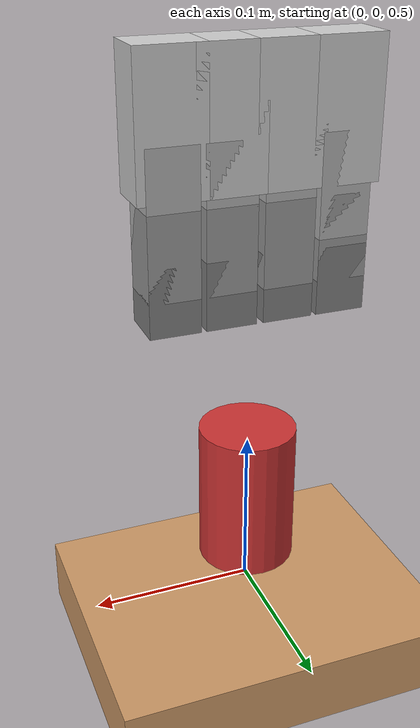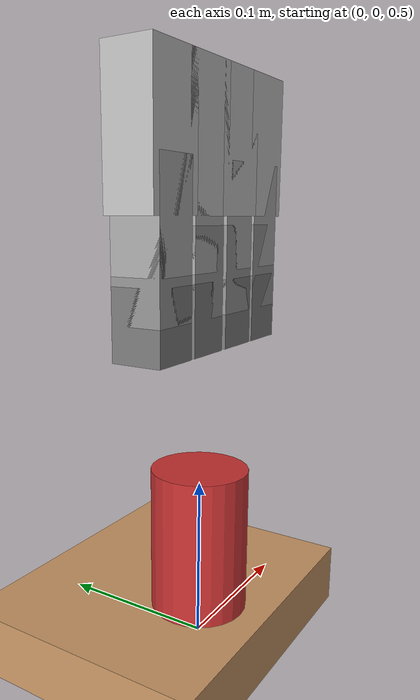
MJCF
<mujoco model="grasp_simulation">
    <compiler angle="radian" meshdir="../meshes" texturedir="../textures"/>

    <option gravity="0 0 -9.81" timestep="0.002" impratio="10">
        <flag contact="enable" energy="enable"/>
    </option>

    <visual>
        <headlight ambient="0.5 0.5 0.5"/>
    </visual>

    <asset>
        <texture type="skybox" builtin="gradient" rgb1="0.3 0.5 0.7" rgb2="0 0 0" width="512" height="512"/>
        <texture name="groundplane" type="2d" builtin="checker" rgb1="0.2 0.2 0.2" rgb2="0.3 0.3 0.3" width="512" height="512"/>
        <material name="groundplane" texture="groundplane" texrepeat="10 10"/>
    </asset>

    <worldbody>
        <!-- Ground plane -->
        <geom name="floor" type="plane" size="2 2 0.1" material="groundplane"/>

        <!-- Table -->
        <body name="table" pos="0 0 0.5">
            <geom name="table_top" type="box" size="0.6 0.4 0.02" rgba="0.8 0.6 0.4 1"/>
        </body>

        <!-- Simple Allegro Hand Model -->
        <!-- This is a simplified version - you'll need to copy the full Allegro model later -->
        <body name="hand_base" pos="0 0 0.8">
            <!-- Index finger -->
            <body name="if_link_0" pos="0.05 0 0">
                <joint name="if_joint_0" type="hinge" pos="0 0 0" axis="0 1 0" range="-0.5 0.5"/>
                <geom name="if_link_0_geom" type="box" size="0.02 0.015 0.04" rgba="0.8 0.8 0.8 1"/>

                <body name="if_link_1" pos="0 0 -0.04">
                    <joint name="if_joint_1" type="hinge" pos="0 0 0" axis="1 0 0" range="0 1.6"/>
                    <geom name="if_link_1_geom" type="box" size="0.015 0.015 0.03" rgba="0.7 0.7 0.7 1"/>

                    <body name="if_link_2" pos="0 0 -0.03">
                        <joint name="if_joint_2" type="hinge" pos="0 0 0" axis="1 0 0" range="0 1.6"/>
                        <geom name="if_link_2_geom" type="box" size="0.015 0.015 0.025" rgba="0.6 0.6 0.6 1"/>

                        <body name="if_link_3" pos="0 0 -0.025">
                            <joint name="if_joint_3" type="hinge" pos="0 0 0" axis="1 0 0" range="0 1.6"/>
                            <geom name="if_link_3_geom" type="box" size="0.015 0.015 0.02" rgba="0.5 0.5 0.5 1"/>
                        </body>
                    </body>
                </body>
            </body>

            <!-- Middle finger -->
            <body name="mf_link_0" pos="0.017 0 0">
                <joint name="mf_joint_0" type="hinge" pos="0 0 0" axis="0 1 0" range="-0.5 0.5"/>
                <geom name="mf_link_0_geom" type="box" size="0.02 0.015 0.04" rgba="0.8 0.8 0.8 1"/>

                <body name="mf_link_1" pos="0 0 -0.04">
                    <joint name="mf_joint_1" type="hinge" pos="0 0 0" axis="1 0 0" range="0 1.6"/>
                    <geom name="mf_link_1_geom" type="box" size="0.015 0.015 0.03" rgba="0.7 0.7 0.7 1"/>

                    <body name="mf_link_2" pos="0 0 -0.03">
                        <joint name="mf_joint_2" type="hinge" pos="0 0 0" axis="1 0 0" range="0 1.6"/>
                        <geom name="mf_link_2_geom" type="box" size="0.015 0.015 0.025" rgba="0.6 0.6 0.6 1"/>

                        <body name="mf_link_3" pos="0 0 -0.025">
                            <joint name="mf_joint_3" type="hinge" pos="0 0 0" axis="1 0 0" range="0 1.6"/>
                            <geom name="mf_link_3_geom" type="box" size="0.015 0.015 0.02" rgba="0.5 0.5 0.5 1"/>
                        </body>
                    </body>
                </body>
            </body>

            <!-- Ring finger -->
            <body name="rf_link_0" pos="-0.017 0 0">
                <joint name="rf_joint_0" type="hinge" pos="0 0 0" axis="0 1 0" range="-0.5 0.5"/>
                <geom name="rf_link_0_geom" type="box" size="0.02 0.015 0.04" rgba="0.8 0.8 0.8 1"/>

                <body name="rf_link_1" pos="0 0 -0.04">
                    <joint name="rf_joint_1" type="hinge" pos="0 0 0" axis="1 0 0" range="0 1.6"/>
                    <geom name="rf_link_1_geom" type="box" size="0.015 0.015 0.03" rgba="0.7 0.7 0.7 1"/>

                    <body name="rf_link_2" pos="0 0 -0.03">
                        <joint name="rf_joint_2" type="hinge" pos="0 0 0" axis="1 0 0" range="0 1.6"/>
                        <geom name="rf_link_2_geom" type="box" size="0.015 0.015 0.025" rgba="0.6 0.6 0.6 1"/>

                        <body name="rf_link_3" pos="0 0 -0.025">
                            <joint name="rf_joint_3" type="hinge" pos="0 0 0" axis="1 0 0" range="0 1.6"/>
                            <geom name="rf_link_3_geom" type="box" size="0.015 0.015 0.02" rgba="0.5 0.5 0.5 1"/>
                        </body>
                    </body>
                </body>
            </body>

            <!-- Thumb -->
            <body name="th_link_0" pos="-0.05 0 0">
                <joint name="th_joint_0" type="hinge" pos="0 0 0" axis="0 0 1" range="-1.0 1.0"/>
                <geom name="th_link_0_geom" type="box" size="0.02 0.015 0.04" rgba="0.8 0.8 0.8 1"/>

                <body name="th_link_1" pos="0 0 -0.04">
                    <joint name="th_joint_1" type="hinge" pos="0 0 0" axis="0 1 0" range="0 1.3"/>
                    <geom name="th_link_1_geom" type="box" size="0.015 0.015 0.03" rgba="0.7 0.7 0.7 1"/>

                    <body name="th_link_2" pos="0 0 -0.03">
                        <joint name="th_joint_2" type="hinge" pos="0 0 0" axis="0 1 0" range="0 1.0"/>
                        <geom name="th_link_2_geom" type="box" size="0.015 0.015 0.025" rgba="0.6 0.6 0.6 1"/>

                        <body name="th_link_3" pos="0 0 -0.025">
                            <joint name="th_joint_3" type="hinge" pos="0 0 0" axis="0 1 0" range="0 1.0"/>
                            <geom name="th_link_3_geom" type="box" size="0.015 0.015 0.02" rgba="0.5 0.5 0.5 1"/>
                        </body>
                    </body>
                </body>
            </body>
        </body>

        <!-- Object to grasp -->
        <body name="object" pos="0 0 0.55">
            <freejoint/>
            <geom name="cylinder" type="cylinder" size="0.03 0.06"
                  rgba="0.8 0.2 0.2 1" mass="0.2"
                  friction="1.0 0.005 0.0001" condim="4"/>
            <inertial pos="0 0 0" mass="0.2"
                      diaginertia="0.00018 0.00018 0.00009"/>
        </body>
    </worldbody>

    <!-- Define actuators for Allegro hand -->
    <actuator>
        <!-- Index finger actuators -->
        <position name="if_actuator_0" joint="if_joint_0" kp="5" forcerange="-5 5"/>
        <position name="if_actuator_1" joint="if_joint_1" kp="5" forcerange="-5 5"/>
        <position name="if_actuator_2" joint="if_joint_2" kp="5" forcerange="-5 5"/>
        <position name="if_actuator_3" joint="if_joint_3" kp="5" forcerange="-5 5"/>

        <!-- Middle finger actuators -->
        <position name="mf_actuator_0" joint="mf_joint_0" kp="5" forcerange="-5 5"/>
        <position name="mf_actuator_1" joint="mf_joint_1" kp="5" forcerange="-5 5"/>
        <position name="mf_actuator_2" joint="mf_joint_2" kp="5" forcerange="-5 5"/>
        <position name="mf_actuator_3" joint="mf_joint_3" kp="5" forcerange="-5 5"/>

        <!-- Ring finger actuators -->
        <position name="rf_actuator_0" joint="rf_joint_0" kp="5" forcerange="-5 5"/>
        <position name="rf_actuator_1" joint="rf_joint_1" kp="5" forcerange="-5 5"/>
        <position name="rf_actuator_2" joint="rf_joint_2" kp="5" forcerange="-5 5"/>
        <position name="rf_actuator_3" joint="rf_joint_3" kp="5" forcerange="-5 5"/>

        <!-- Thumb actuators -->
        <position name="th_actuator_0" joint="th_joint_0" kp="5" forcerange="-5 5"/>
        <position name="th_actuator_1" joint="th_joint_1" kp="5" forcerange="-5 5"/>
        <position name="th_actuator_2" joint="th_joint_2" kp="5" forcerange="-5 5"/>
        <position name="th_actuator_3" joint="th_joint_3" kp="5" forcerange="-5 5"/>
    </actuator>
</mujoco>
